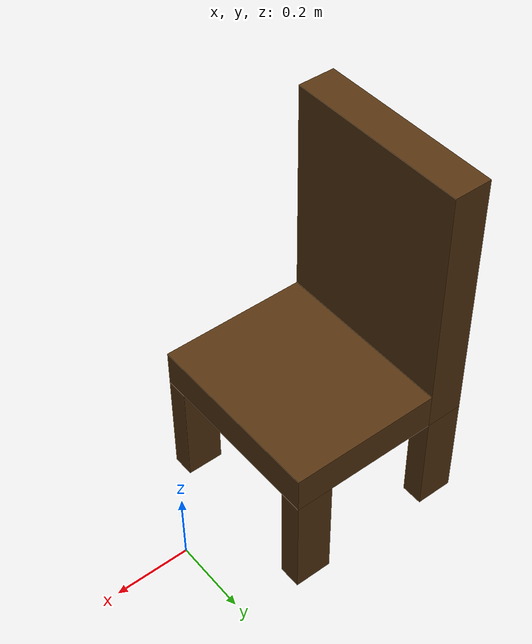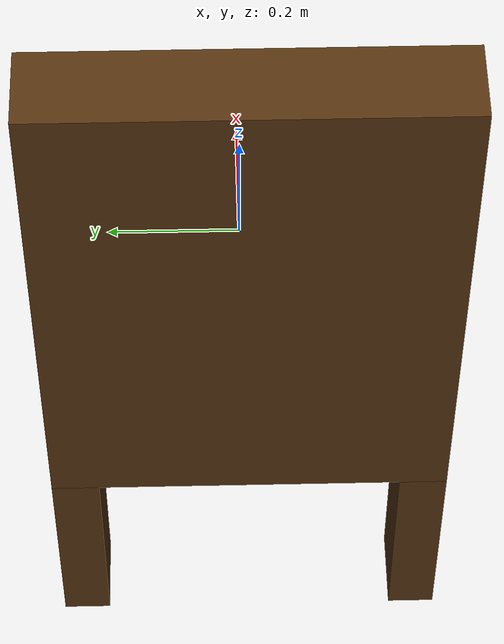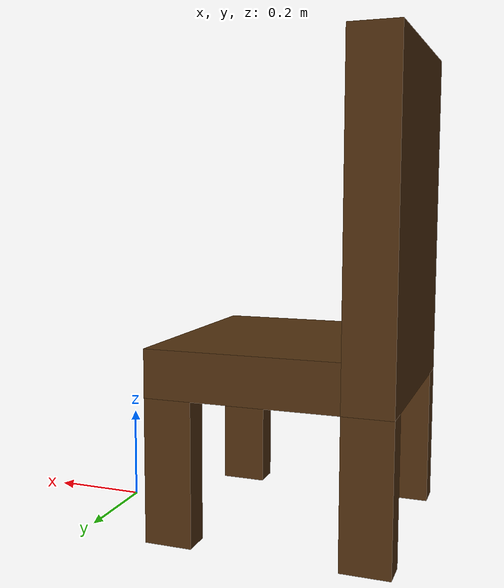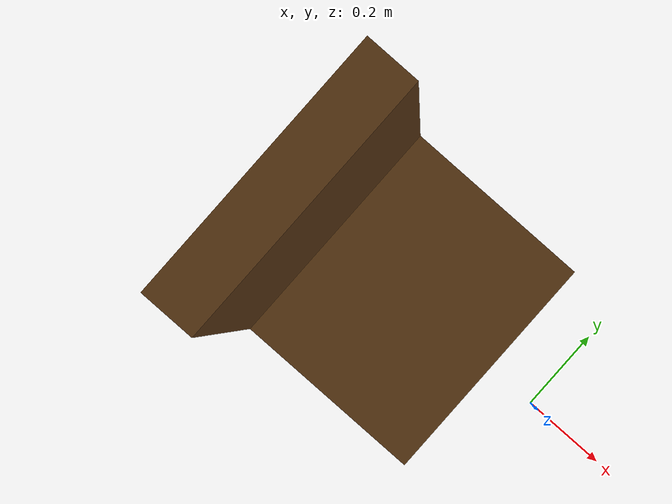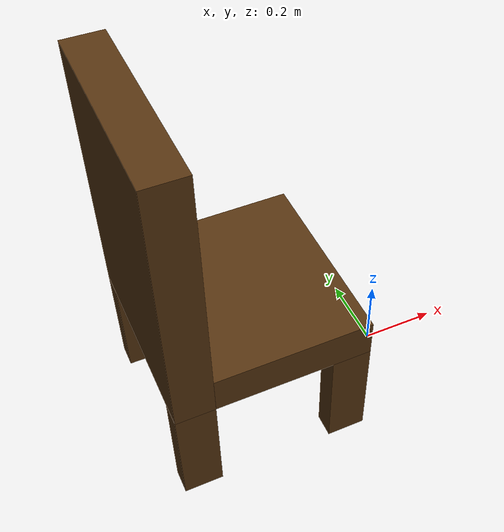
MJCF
<mujoco model="chair">
  <worldbody>
    <body name="chair" pos="-0.35 0 0.2" quat="1 0 0 0">
      <freejoint/>
      <geom name="seat" type="box" pos="0 0 0.15" size=".2 .25 .05" mass="1." material="seat"/>
      <geom name="back" type="box" pos="-0.25 0 0.45" size=".05 0.25 .35" mass="1." quat="1 0 0 0" material="legs"/>
      <geom name="chair_leg_1" type="box" pos="0.15 0.22 -0.05" size=".05 0.03 .15" mass="1." quat="1 0 0 0" material="legs"/>
      <geom name="chair_leg_2" type="box" pos="0.15 -0.22 -0.05" size=".05 0.03 .15" mass="1." quat="1 0 0 0" material="legs"/>
      <geom name="chair_leg_3" type="box" pos="-0.25 0.22 -0.05" size=".05 0.03 .15" mass="1." quat="1 0 0 0" material="legs"/>
      <geom name="chair_leg_4" type="box" pos="-0.25 -0.22 -0.05" size=".05 0.03 .15" mass="1." quat="1 0 0 0" material="legs"/>
    </body>
  </worldbody>

  <asset>
    <material name="seat" rgba="0.33333  0.20000  0.06667 1"/>
    <material name="legs" rgba="0.33333  0.20000  0.06667 1"/>
  </asset>

  <keyframe>
    <key name="home"
    qpos="
    -0.5153
    0.03293
    0.8773
    0.9976
    -0.0065
    0.06847
    0.0058
    -0.0687
    -0.7795
    0.02867
    0.0816
    0.0182
    -0.8685
    -1.7660
    -0.0817
    -0.0564
    0.0544
    0.0341
    -0.8660
    -1.2770
    0.06225
    -0.0022
    0.5645
    -0.4138
    -1.7504
    0.6516
    -0.5763
    -1.7503
    -0.4009
    0.00625
    0.1997
    0.99998
    -5.34e-05
    8.27e-05
    0.00636"/>
  </keyframe>
</mujoco>
